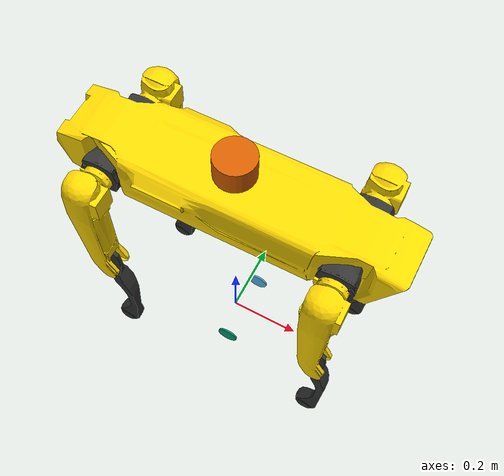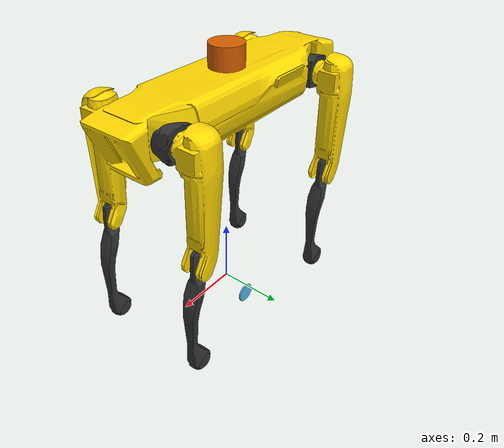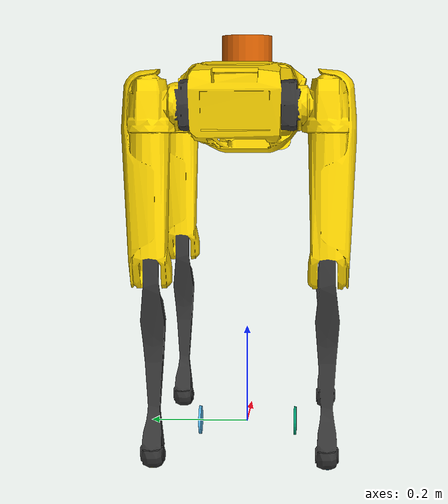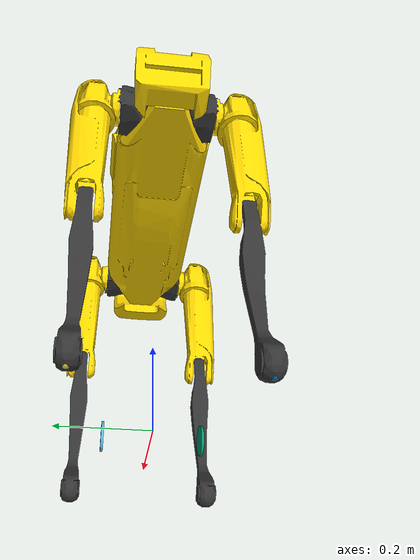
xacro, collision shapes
<?xml version="1.0"?>
<robot xmlns:xacro="http://www.ros.org/wiki/xacro" name="spot">

  <xacro:property name="wheel_radius" value="0.03"/>
  <xacro:property name="wheel_separation" value="0.335"/>
  <xacro:property name="caster_wheel_radius" value="${wheel_radius/2}"/>
  <xacro:property name="caster_wheel_mass" value="0.001"/>
  <xacro:property name="caster_wheel_joint_offset" value="0.3"/>
  <xacro:property name="wheel_offset" value="0.025"/>

  <xacro:macro name="default_inertial" params="mass">
    <inertial>
      <mass value="${mass}"/>
      <inertia ixx="1.0" ixy="0.0" ixz="0.0" iyy="1.0" iyz="0.0" izz="1.0"/>
    </inertial>
  </xacro:macro>

  <xacro:macro name="cylinder_inertia" params="m r h">
    <inertial>
      <mass value="${m}"/>
      <inertia ixx="${m*(3*r*r+h*h)/12}" ixy = "0" ixz = "0" iyy="${m*(3*r*r+h*h)/12}" iyz = "0" izz="${m*r*r/2}"/>
    </inertial>
  </xacro:macro>

  <xacro:macro name="sphere_inertia" params="m r">
    <inertial>
      <mass value="${m}"/>
      <inertia ixx="${2.0*m*(r*r)/5.0}" ixy="0.0" ixz="0.0" iyy="${2.0*m*(r*r)/5.0}" iyz="0.0" izz="${2.0*m*(r*r)/5.0}"/>
    </inertial>
  </xacro:macro>

  <link name="base_footprint">
    <xacro:default_inertial mass="32.5"/>
    <visual name="visual">
      <origin xyz="0 0 0.655" rpy="0 0 0" />
      <geometry>
        <mesh filename="package://spot_sim_description/meshes/spot_whole_body.dae" />
      </geometry>
    </visual>
    <collision>
      <origin xyz="0 0 0.655" rpy="0 0 0" />
      <geometry>
        <mesh filename="package://spot_sim_description/meshes/spot_whole_body.dae" />
      </geometry>
    </collision>
  </link>

  <xacro:macro name="wheel" params="prefix reflect">
    <link name="${prefix}_wheel">
      <collision>
        <origin xyz="0 0 0" rpy="${pi/2} 0 0"/>
        <geometry>
          <cylinder radius="${wheel_radius}" length="0.005"/>
        </geometry>
      </collision>
      <xacro:cylinder_inertia m="0.5" r="${wheel_radius}" h="0.005"/>
    </link>

    <joint name="${prefix}_wheel_joint" type="continuous">
      <axis xyz="0 1 0" rpy="0 0 0" />
      <parent link="base_footprint"/>
      <child link="${prefix}_wheel"/>
      <origin xyz="${wheel_offset} ${(wheel_separation/2)*reflect} -0.005" rpy="0 0 0"/>
    </joint>
  </xacro:macro>

  <xacro:wheel prefix="left" reflect="0.6"/>
  <xacro:wheel prefix="right" reflect="-0.6"/>

  <xacro:macro name="caster" params="prefix reflectH reflectV">
    <link name="${prefix}_caster_wheel">
      <collision>
        <origin xyz="0 0 0" rpy="0 0 0"/>
        <geometry>
          <sphere radius="${caster_wheel_radius}"/>
        </geometry>
      </collision>
      <xacro:sphere_inertia m="0.05" r="${caster_wheel_radius}"/>
    </link>

    <joint name="${prefix}_caster_wheel_joint" type="continuous">
      <axis xyz="0 1 0" rpy="0 0 0" />
      <parent link="base_footprint"/>
      <child link="${prefix}_caster_wheel"/>
      <origin xyz="${wheel_offset + caster_wheel_joint_offset*reflectV} ${wheel_separation/2*reflectH} -${caster_wheel_radius+0.005}" rpy="0 0 0"/>
    </joint>
  </xacro:macro>

  <xacro:caster prefix="back_left" reflectH="1" reflectV="-1"/>
  <xacro:caster prefix="back_right" reflectH="-1" reflectV="-1"/>

  <xacro:include filename="$(find spot_sim_description)/urdf/spot.plugins.xacro"/>

  <xacro:include filename="$(find velodyne_description)/urdf/VLP-16.urdf.xacro"/>
  <xacro:VLP-16 parent="base_footprint" name="velodyne" topic="/lidar_points" hz="10" samples="1024" gpu="false" lasers="16" max_range="100">
    <origin xyz="0 0 0.73" rpy="0 0 0" />
  </xacro:VLP-16>

</robot>

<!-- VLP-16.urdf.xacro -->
<robot xmlns:xacro="http://www.ros.org/wiki/xacro" name="VLP-16">
  <xacro:property name="M_PI" value="3.1415926535897931" />
  <xacro:macro name="VLP-16" params="*origin is_sim:=true parent:=base_link name:=velodyne tf_prefix:='' topic:=/velodyne_points organize_cloud:=false hz:=10 lasers:=16 samples:=1875 collision_range:=0.3 min_range:=0.0 max_range:=100.0 noise:=0.008 min_angle:=-${M_PI} max_angle:=${M_PI} gpu:=false">

    <joint name="${name}_base_mount_joint" type="fixed">
      <xacro:insert_block name="origin" />
      <parent link="${parent}"/>
      <child link="${name}_base_link"/>
    </joint>

    <link name="${name}_base_link">
      <inertial>
        <mass value="0.83"/>
        <origin xyz="0 0 0.03585"/>
        <inertia ixx="${(0.83 * (3.0*0.0516*0.0516 + 0.0717*0.0717)) / 12.0}" ixy="0" ixz="0"
          iyy="${(0.83 * (3.0*0.0516*0.0516 + 0.0717*0.0717)) / 12.0}" iyz="0"
          izz="${0.5 * 0.83 * (0.0516*0.0516)}"/>
      </inertial>
      <visual>
        <geometry>
          <mesh filename="package://velodyne_description/meshes/VLP16_base_1.dae" />
        </geometry>
      </visual>
      <visual>
        <geometry>
          <mesh filename="package://velodyne_description/meshes/VLP16_base_2.dae" />
        </geometry>
      </visual>
      <collision>
        <origin rpy="0 0 0" xyz="0 0 0.03585"/>
        <geometry>
          <cylinder radius="0.0516" length="0.0717"/>
        </geometry>
      </collision>
    </link>

    <joint name="${name}_base_scan_joint" type="fixed" >
      <origin xyz="0 0 0.0377" rpy="0 0 0" />
      <parent link="${name}_base_link" />
      <child link="${name}"/>
    </joint>

    <link name="${name}">
      <inertial>
        <mass value="0.01"/>
        <origin xyz="0 0 0"/>
        <inertia ixx="1e-7" ixy="0" ixz="0" iyy="1e-7" iyz="0" izz="1e-7"/>
      </inertial>
      <visual>
        <origin xyz="0 0 -0.0377" />
        <geometry>
          <mesh filename="package://velodyne_description/meshes/VLP16_scan.dae" />
        </geometry>
      </visual>
      <collision>
        <geometry>
          <sphere radius="0"/>
        </geometry>
      </collision>
    </link>

    <!-- Gazebo requires the velodyne_gazebo_plugins package -->
    <xacro:if value="${is_sim}">
        <gazebo reference="${name}">
            <xacro:if value="${gpu}">
                <sensor type="gpu_ray" name="${name}-VLP16">
                <pose>0 0 0 0 0 0</pose>
                <visualize>false</visualize>
                <update_rate>${hz}</update_rate>
                <ray>
                    <scan>
                    <horizontal>
                        <samples>${samples}</samples>
                        <resolution>1</resolution>
                        <min_angle>${min_angle}</min_angle>
                        <max_angle>${max_angle}</max_angle>
                    </horizontal>
                    <vertical>
                        <samples>${lasers}</samples>
                        <resolution>1</resolution>
                        <min_angle>-${15.0*M_PI/180.0}</min_angle>
                        <max_angle> ${15.0*M_PI/180.0}</max_angle>
                    </vertical>
                    </scan>
                    <range>
                    <min>${collision_range}</min>
                    <max>${max_range+1}</max>
                    <resolution>0.001</resolution>
                    </range>
                    <noise>
                    <type>gaussian</type>
                    <mean>0.0</mean>
                    <stddev>0.0</stddev>
                    </noise>
                </ray>
                <plugin name="gazebo_ros_laser_controller" filename="libgazebo_ros_velodyne_laser.so">
                    <ros>
                    <namespace>/${name}</namespace>
                    <remapping>~/out:=${topic}</remapping>
                    </ros>
                    <tf_prefix>${tf_prefix}</tf_prefix>
                    <frame_name>${name}</frame_name>
                    <organize_cloud>${organize_cloud}</organize_cloud>
                    <min_range>${min_range}</min_range>
                    <max_range>${max_range}</max_range>
                    <gaussian_noise>${noise}</gaussian_noise>
                </plugin>
                </sensor>
            </xacro:if>
            <xacro:unless value="${gpu}">
                <sensor type="ray" name="${name}-VLP16">
                <pose>0 0 0 0 0 0</pose>
                <visualize>false</visualize>
                <update_rate>${hz}</update_rate>
                <ray>
                    <scan>
                    <horizontal>
                        <samples>${samples}</samples>
                        <resolution>1</resolution>
                        <min_angle>${min_angle}</min_angle>
                        <max_angle>${max_angle}</max_angle>
                    </horizontal>
                    <vertical>
                        <samples>${lasers}</samples>
                        <resolution>1</resolution>
                        <min_angle>-${15.0*M_PI/180.0}</min_angle>
                        <max_angle> ${15.0*M_PI/180.0}</max_angle>
                    </vertical>
                    </scan>
                    <range>
                    <min>${collision_range}</min>
                    <max>${max_range+1}</max>
                    <resolution>0.001</resolution>
                    </range>
                    <noise>
                    <type>gaussian</type>
                    <mean>0.0</mean>
                    <stddev>0.0</stddev>
                    </noise>
                </ray>
                <plugin name="gazebo_ros_laser_controller" filename="libgazebo_ros_velodyne_laser.so">
                    <ros>
                    <namespace>/${name}</namespace>
                    <remapping>~/out:=${topic}</remapping>
                    </ros>
                    <tf_prefix>${tf_prefix}</tf_prefix>
                    <frame_name>${name}</frame_name>
                    <organize_cloud>${organize_cloud}</organize_cloud>
                    <min_range>${min_range}</min_range>
                    <max_range>${max_range}</max_range>
                    <gaussian_noise>${noise}</gaussian_noise>
                </plugin>
                </sensor>
            </xacro:unless>
        </gazebo>
    </xacro:if>

  </xacro:macro>
</robot>
